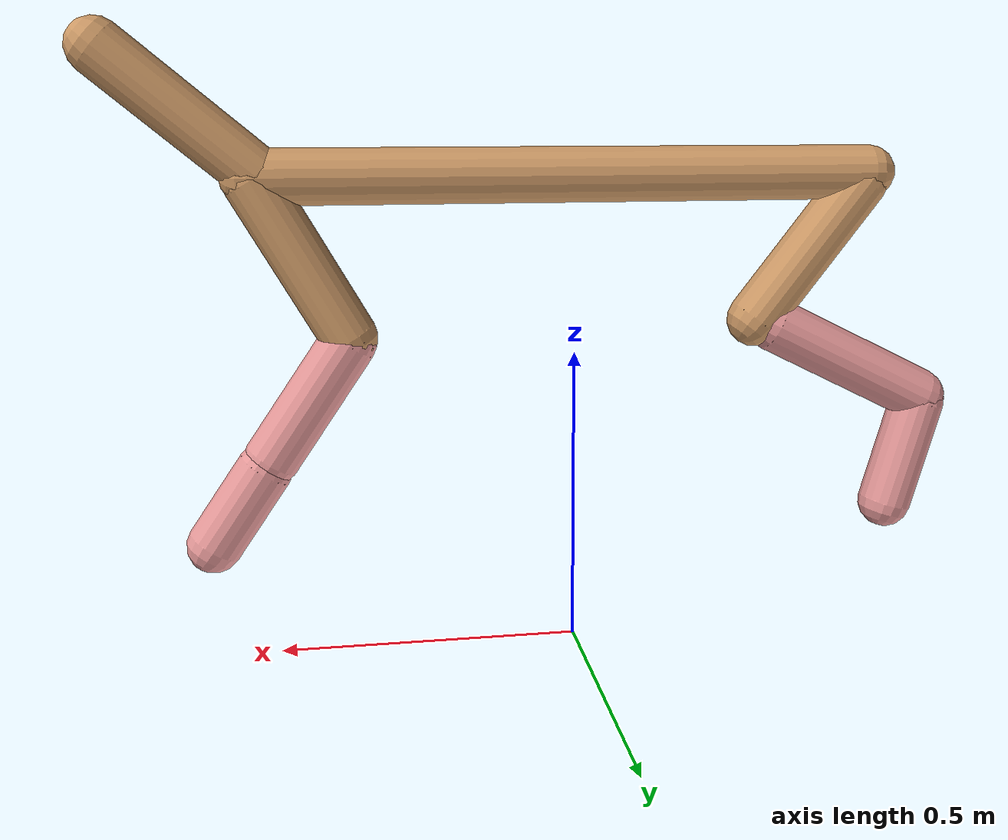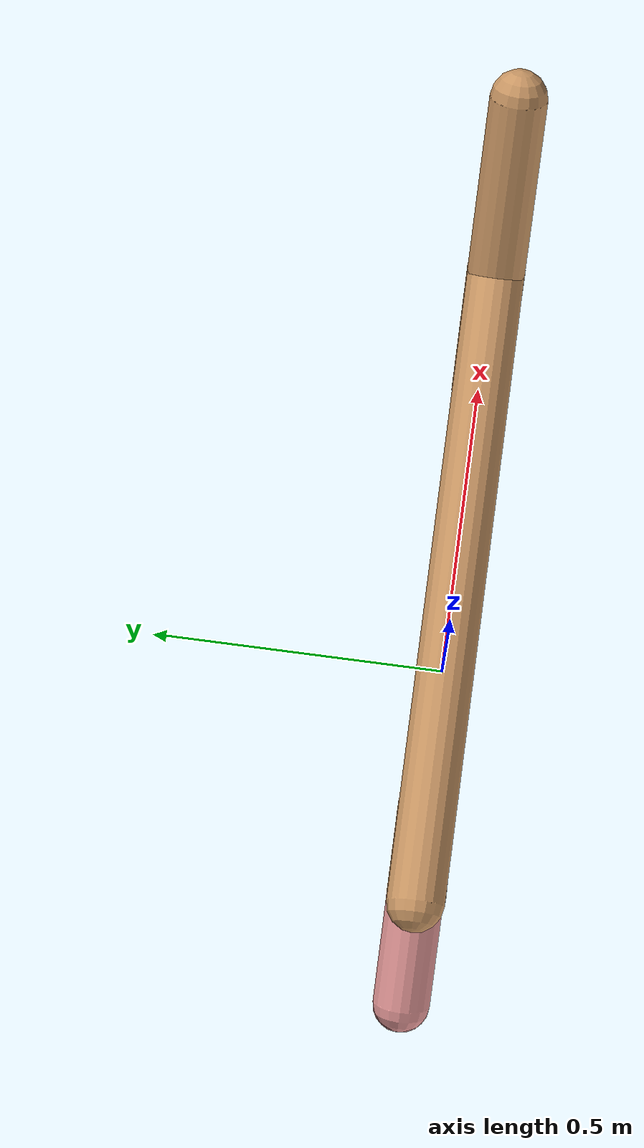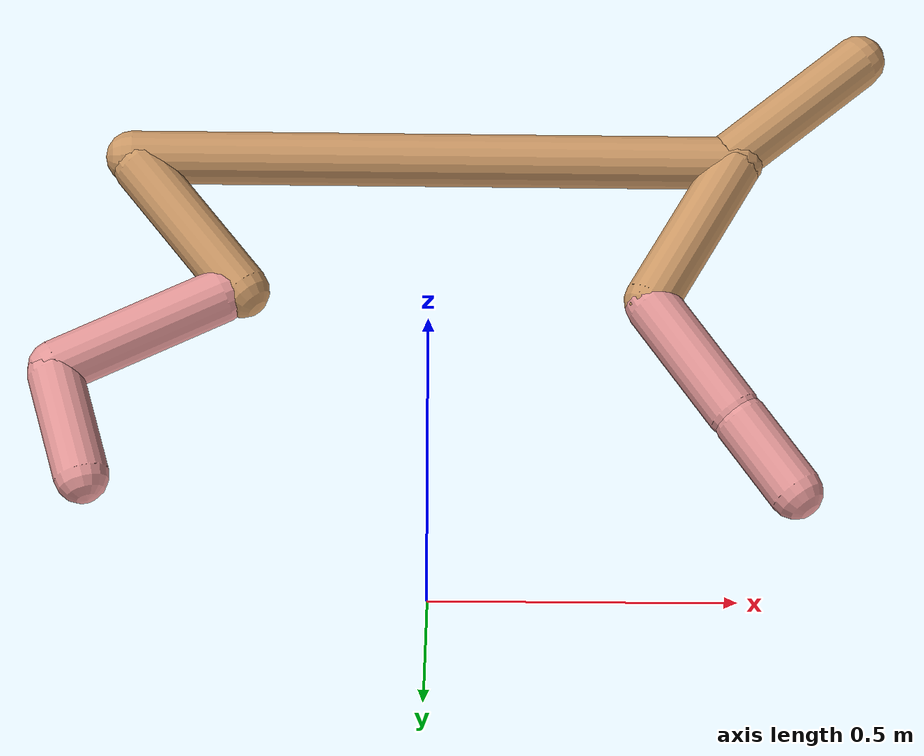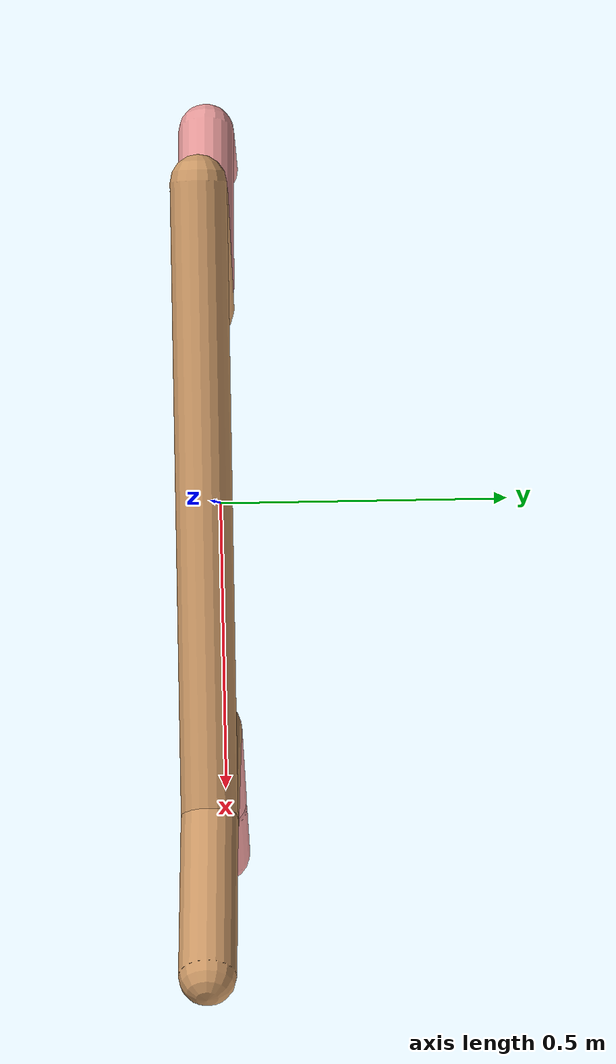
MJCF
<mujoco model="cheetah">
  <compiler angle="radian" coordinate="local" inertiafromgeom="true" settotalmass="14" />
  <default>
    <joint armature=".1" damping=".01" limited="true" solimplimit="0 .8 .03" solreflimit=".02 1" stiffness="8" />
    <geom conaffinity="0" condim="3" contype="1" friction="0.8 .1 .1" rgba="0.8 0.6 .4 1" solimp="0.0 0.8 0.01" solref="0.02 1" />
    <motor ctrllimited="true" ctrlrange="-1 1" />
  </default>
  <size nstack="300000" nuser_geom="1" />
  <option gravity="0 0 -9.81" timestep="0.01" />
  <worldbody>
    <body name="torso" pos="0.0 0.0 0.7943016289428291">
      <joint armature="0" axis="1 0 0" damping="0" limited="false" name="ignorex" pos="0 0 0" stiffness="0" type="slide" />
      <joint armature="0" axis="0 0 1" damping="0" limited="false" name="ignorez" pos="0 0 0" stiffness="0" type="slide" />
      <joint armature="0" axis="0 1 0" damping="0" limited="false" name="ignorey" pos="0 0 0" stiffness="0" type="hinge" />
      <geom fromto="-0.5 0.0 0.0 0.520448948338357 0.0 0.0" name="torso" size="0.04504336542520722" type="capsule" />
      <geom axisangle="0 1 0 .87" name="head" pos="0.620448948338357 0.0 0.1" size="0.045261871317617705 0.15" type="capsule" />

      <body name="bthigh" pos="-.5 0 0">
        <joint axis="0 1 0" damping="6" name="bthigh" pos="0 0 0" range="-.52 1.05" stiffness="240" type="hinge" />
        <geom axisangle="0 1 0 -3.8" name="bthigh" pos="0.10066913071604543 0.0 -0.13086986993085906" size="0.04586978658571595 0.14609745597258758" type="capsule" />
        <body name="bshin" pos="0.16133826143209085 0.0 -0.2517397398617181">
          <joint axis="0 1 0" damping="4.5" name="bshin" pos="0 0 0" range="-.785 .785" stiffness="180" type="hinge" />
          <geom axisangle="0 1 0 -2.03" name="bshin" pos="-0.14101544254773202 0.0 -0.07050772127386601" rgba="0.9 0.6 0.6 1" size="0.04586978658571595 0.15113529928198716" type="capsule" />
          <body name="bfoot" pos="-0.28203088509546403 0.0 -0.14101544254773202">
            <joint axis="0 1 0" damping="3" name="bfoot" pos="0 0 0" range="-.4 .785" stiffness="120" type="hinge" />
            <geom axisangle="0 1 0 -.27" name="bfoot" pos="0.030210213180283618 0.0 -0.09767968928291704" rgba="0.9 0.6 0.6 1" size="0.04586978658571595 0.09471145421671195" type="capsule" />
            <inertial mass="10" />
          </body>
        </body>
      </body>
      <body name="fthigh" pos="0.520448948338357 0.0 0.0">
        <joint axis="0 1 0" damping="4.5" name="fthigh" pos="0 0 0" range="-1.5 0.8" stiffness="180" type="hinge" />
        <geom axisangle="0 1 0 .52" name="fthigh" pos="-0.07661046985185567 0.0 -0.13133223403175256" size="0.045853150360143334 0.14611936888012164" type="capsule" />
        <body name="fshin" pos="-0.15322093970371134 0.0 -0.26266446806350513">
          <joint axis="0 1 0" damping="3" name="fshin" pos="0 0 0" range="-1.2 1.1" stiffness="120" type="hinge" />
          <geom axisangle="0 1 0 -.6" name="fshin" pos="0.0711219116878297 0.0 -0.09847649310622573" rgba="0.9 0.6 0.6 1" size="0.045853150360143334 0.11645603835558566" type="capsule" />
          <body name="ffoot" pos="0.1422438233756594 0.0 -0.19695298621245147">
            <joint axis="0 1 0" damping="1.5" name="ffoot" pos="0 0 0" range="-3.1 -0.3" stiffness="60" type="hinge" />
            <geom axisangle="0 1 0 -.6" name="ffoot" pos="0.04873389385008833 0.0 -0.07580827932235965" rgba="0.9 0.6 0.6 1" size="0.045853150360143334 0.0769049309895377" type="capsule" />
            <inertial mass="10" />
          </body>
        </body>
      </body>
    </body>
  </worldbody>
  <actuator>
    <motor gear="120" joint="bthigh" name="bthigh" />
    <motor gear="90" joint="bshin" name="bshin" />
    <motor gear="60" joint="bfoot" name="bfoot" />
    <motor gear="120" joint="fthigh" name="fthigh" />
    <motor gear="60" joint="fshin" name="fshin" />
    <motor gear="30" joint="ffoot" name="ffoot" />
  </actuator>
</mujoco>
